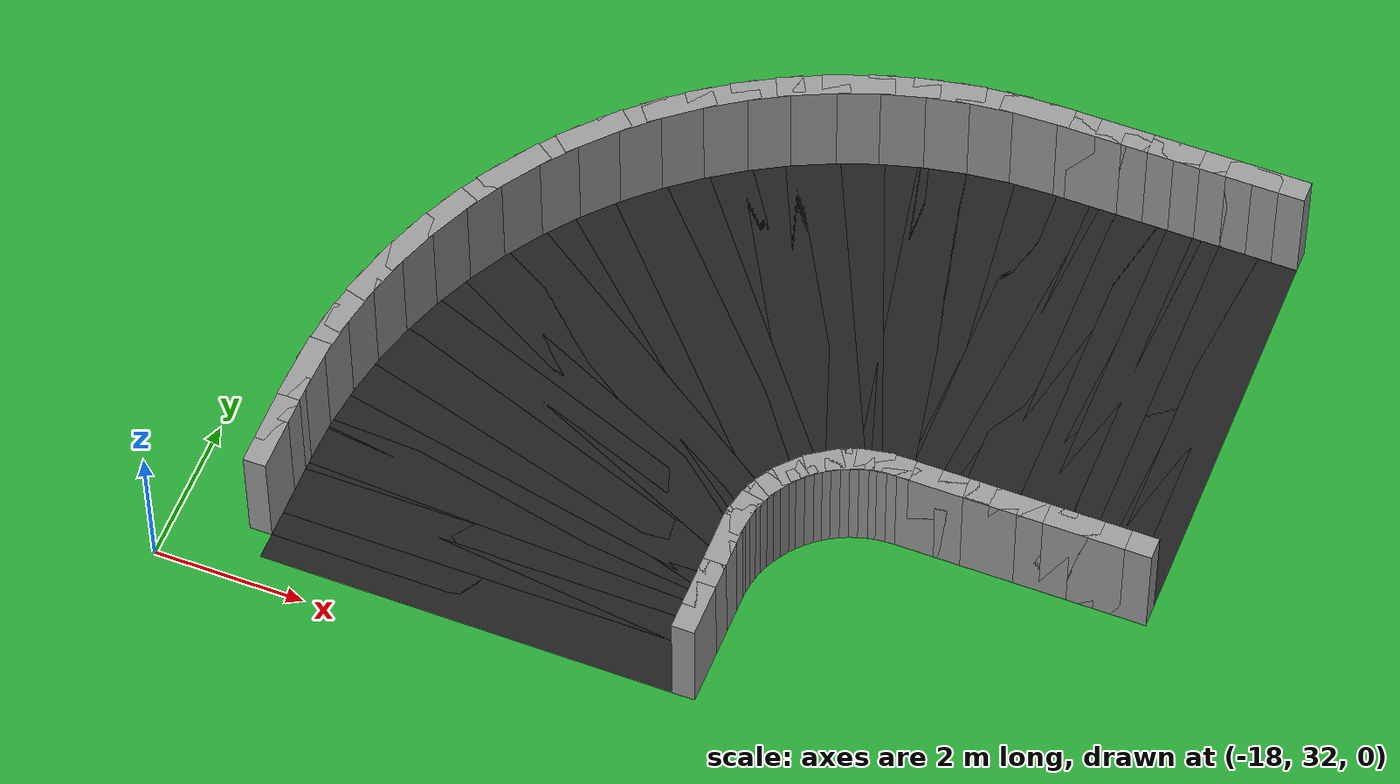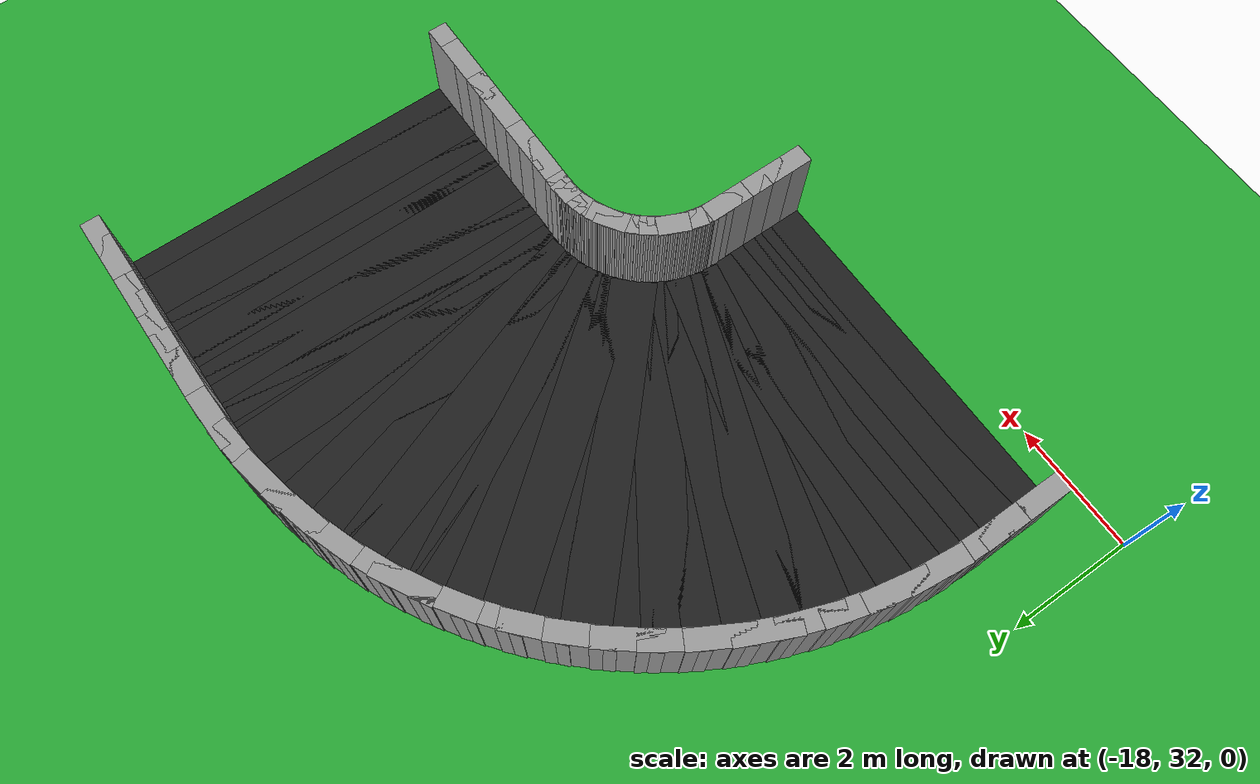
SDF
<sdf version="1.6">
 <world name="loop_speedloop">
  <include><uri>model://sun</uri></include>
  <model name="ground_plane">
   <static>true</static>
   <link name="link">
    <collision name="collision">
     <surface><friction><ode><mu>100</mu><mu2>50</mu2></ode></friction></surface>
     <geometry><plane><normal>0 0 1</normal><size>120 120</size></plane></geometry>
    </collision>
    <visual name="visual">
     <geometry><plane><normal>0 0 1</normal><size>120 120</size></plane></geometry>
     <material>
      <script><uri>file://media/materials/scripts/gazebo.material</uri><name>Gazebo/Green</name></script>
     </material>
    </visual>
   </link>
  </model>
  <model name="asphalt_371">
   <static>true</static>
   <pose>-6.524 38.502 0.005 0 0 3.14159</pose>
   <link name="link">
    <visual name="visual">
     <geometry><box><size>0.710 5.500 0.010</size></box></geometry>
     <material>
      <script><uri>file://media/materials/scripts/gazebo.material</uri><name>Gazebo/Black</name></script>
     </material>
    </visual>
   </link>
  </model>
  <model name="curbL_371">
   <static>true</static>
   <pose>-6.524 35.602 0.750 0 0 3.14159</pose>
   <link name="link">
    <collision name="collision"><geometry><box><size>0.710 0.300 1.500</size></box></geometry></collision>
    <visual name="visual">
     <geometry><box><size>0.710 0.300 1.500</size></box></geometry>
     <material>
      <script><uri>file://media/materials/scripts/gazebo.material</uri><name>Gazebo/Grey</name></script>
     </material>
    </visual>
   </link>
  </model>
  <model name="curbR_371">
   <static>true</static>
   <pose>-6.524 41.402 0.750 0 0 3.14159</pose>
   <link name="link">
    <collision name="collision"><geometry><box><size>0.710 0.300 1.500</size></box></geometry></collision>
    <visual name="visual">
     <geometry><box><size>0.710 0.300 1.500</size></box></geometry>
     <material>
      <script><uri>file://media/materials/scripts/gazebo.material</uri><name>Gazebo/Grey</name></script>
     </material>
    </visual>
   </link>
  </model>
  <model name="asphalt_372">
   <static>true</static>
   <pose>-6.874 38.502 0.005 0 0 3.14159</pose>
   <link name="link">
    <visual name="visual">
     <geometry><box><size>0.710 5.500 0.010</size></box></geometry>
     <material>
      <script><uri>file://media/materials/scripts/gazebo.material</uri><name>Gazebo/Black</name></script>
     </material>
    </visual>
   </link>
  </model>
  <model name="curbL_372">
   <static>true</static>
   <pose>-6.874 35.602 0.750 0 0 3.14159</pose>
   <link name="link">
    <collision name="collision"><geometry><box><size>0.710 0.300 1.500</size></box></geometry></collision>
    <visual name="visual">
     <geometry><box><size>0.710 0.300 1.500</size></box></geometry>
     <material>
      <script><uri>file://media/materials/scripts/gazebo.material</uri><name>Gazebo/Grey</name></script>
     </material>
    </visual>
   </link>
  </model>
  <model name="curbR_372">
   <static>true</static>
   <pose>-6.874 41.402 0.750 0 0 3.14159</pose>
   <link name="link">
    <collision name="collision"><geometry><box><size>0.710 0.300 1.500</size></box></geometry></collision>
    <visual name="visual">
     <geometry><box><size>0.710 0.300 1.500</size></box></geometry>
     <material>
      <script><uri>file://media/materials/scripts/gazebo.material</uri><name>Gazebo/Grey</name></script>
     </material>
    </visual>
   </link>
  </model>
  <model name="asphalt_373">
   <static>true</static>
   <pose>-7.224 38.502 0.005 0 0 3.14159</pose>
   <link name="link">
    <visual name="visual">
     <geometry><box><size>0.710 5.500 0.010</size></box></geometry>
     <material>
      <script><uri>file://media/materials/scripts/gazebo.material</uri><name>Gazebo/Black</name></script>
     </material>
    </visual>
   </link>
  </model>
  <model name="curbL_373">
   <static>true</static>
   <pose>-7.224 35.602 0.750 0 0 3.14159</pose>
   <link name="link">
    <collision name="collision"><geometry><box><size>0.710 0.300 1.500</size></box></geometry></collision>
    <visual name="visual">
     <geometry><box><size>0.710 0.300 1.500</size></box></geometry>
     <material>
      <script><uri>file://media/materials/scripts/gazebo.material</uri><name>Gazebo/Grey</name></script>
     </material>
    </visual>
   </link>
  </model>
  <model name="curbR_373">
   <static>true</static>
   <pose>-7.224 41.402 0.750 0 0 3.14159</pose>
   <link name="link">
    <collision name="collision"><geometry><box><size>0.710 0.300 1.500</size></box></geometry></collision>
    <visual name="visual">
     <geometry><box><size>0.710 0.300 1.500</size></box></geometry>
     <material>
      <script><uri>file://media/materials/scripts/gazebo.material</uri><name>Gazebo/Grey</name></script>
     </material>
    </visual>
   </link>
  </model>
  <model name="asphalt_374">
   <static>true</static>
   <pose>-7.574 38.502 0.005 0 0 3.14159</pose>
   <link name="link">
    <visual name="visual">
     <geometry><box><size>0.710 5.500 0.010</size></box></geometry>
     <material>
      <script><uri>file://media/materials/scripts/gazebo.material</uri><name>Gazebo/Black</name></script>
     </material>
    </visual>
   </link>
  </model>
  <model name="curbL_374">
   <static>true</static>
   <pose>-7.574 35.602 0.750 0 0 3.14159</pose>
   <link name="link">
    <collision name="collision"><geometry><box><size>0.710 0.300 1.500</size></box></geometry></collision>
    <visual name="visual">
     <geometry><box><size>0.710 0.300 1.500</size></box></geometry>
     <material>
      <script><uri>file://media/materials/scripts/gazebo.material</uri><name>Gazebo/Grey</name></script>
     </material>
    </visual>
   </link>
  </model>
  <model name="curbR_374">
   <static>true</static>
   <pose>-7.574 41.402 0.750 0 0 3.14159</pose>
   <link name="link">
    <collision name="collision"><geometry><box><size>0.710 0.300 1.500</size></box></geometry></collision>
    <visual name="visual">
     <geometry><box><size>0.710 0.300 1.500</size></box></geometry>
     <material>
      <script><uri>file://media/materials/scripts/gazebo.material</uri><name>Gazebo/Grey</name></script>
     </material>
    </visual>
   </link>
  </model>
  <model name="asphalt_375">
   <static>true</static>
   <pose>-7.924 38.502 0.005 0 0 3.14159</pose>
   <link name="link">
    <visual name="visual">
     <geometry><box><size>0.710 5.500 0.010</size></box></geometry>
     <material>
      <script><uri>file://media/materials/scripts/gazebo.material</uri><name>Gazebo/Black</name></script>
     </material>
    </visual>
   </link>
  </model>
  <model name="curbL_375">
   <static>true</static>
   <pose>-7.924 35.602 0.750 0 0 3.14159</pose>
   <link name="link">
    <collision name="collision"><geometry><box><size>0.710 0.300 1.500</size></box></geometry></collision>
    <visual name="visual">
     <geometry><box><size>0.710 0.300 1.500</size></box></geometry>
     <material>
      <script><uri>file://media/materials/scripts/gazebo.material</uri><name>Gazebo/Grey</name></script>
     </material>
    </visual>
   </link>
  </model>
  <model name="curbR_375">
   <static>true</static>
   <pose>-7.924 41.402 0.750 0 0 3.14159</pose>
   <link name="link">
    <collision name="collision"><geometry><box><size>0.710 0.300 1.500</size></box></geometry></collision>
    <visual name="visual">
     <geometry><box><size>0.710 0.300 1.500</size></box></geometry>
     <material>
      <script><uri>file://media/materials/scripts/gazebo.material</uri><name>Gazebo/Grey</name></script>
     </material>
    </visual>
   </link>
  </model>
  <model name="asphalt_376">
   <static>true</static>
   <pose>-8.274 38.502 0.005 0 0 3.14159</pose>
   <link name="link">
    <visual name="visual">
     <geometry><box><size>0.710 5.500 0.010</size></box></geometry>
     <material>
      <script><uri>file://media/materials/scripts/gazebo.material</uri><name>Gazebo/Black</name></script>
     </material>
    </visual>
   </link>
  </model>
  <model name="curbL_376">
   <static>true</static>
   <pose>-8.274 35.602 0.750 0 0 3.14159</pose>
   <link name="link">
    <collision name="collision"><geometry><box><size>0.710 0.300 1.500</size></box></geometry></collision>
    <visual name="visual">
     <geometry><box><size>0.710 0.300 1.500</size></box></geometry>
     <material>
      <script><uri>file://media/materials/scripts/gazebo.material</uri><name>Gazebo/Grey</name></script>
     </material>
    </visual>
   </link>
  </model>
  <model name="curbR_376">
   <static>true</static>
   <pose>-8.274 41.402 0.750 0 0 3.14159</pose>
   <link name="link">
    <collision name="collision"><geometry><box><size>0.710 0.300 1.500</size></box></geometry></collision>
    <visual name="visual">
     <geometry><box><size>0.710 0.300 1.500</size></box></geometry>
     <material>
      <script><uri>file://media/materials/scripts/gazebo.material</uri><name>Gazebo/Grey</name></script>
     </material>
    </visual>
   </link>
  </model>
  <model name="asphalt_377">
   <static>true</static>
   <pose>-8.624 38.502 0.005 0 0 3.14159</pose>
   <link name="link">
    <visual name="visual">
     <geometry><box><size>0.710 5.500 0.010</size></box></geometry>
     <material>
      <script><uri>file://media/materials/scripts/gazebo.material</uri><name>Gazebo/Black</name></script>
     </material>
    </visual>
   </link>
  </model>
  <model name="curbL_377">
   <static>true</static>
   <pose>-8.624 35.602 0.750 0 0 3.14159</pose>
   <link name="link">
    <collision name="collision"><geometry><box><size>0.710 0.300 1.500</size></box></geometry></collision>
    <visual name="visual">
     <geometry><box><size>0.710 0.300 1.500</size></box></geometry>
     <material>
      <script><uri>file://media/materials/scripts/gazebo.material</uri><name>Gazebo/Grey</name></script>
     </material>
    </visual>
   </link>
  </model>
  <model name="curbR_377">
   <static>true</static>
   <pose>-8.624 41.402 0.750 0 0 3.14159</pose>
   <link name="link">
    <collision name="collision"><geometry><box><size>0.710 0.300 1.500</size></box></geometry></collision>
    <visual name="visual">
     <geometry><box><size>0.710 0.300 1.500</size></box></geometry>
     <material>
      <script><uri>file://media/materials/scripts/gazebo.material</uri><name>Gazebo/Grey</name></script>
     </material>
    </visual>
   </link>
  </model>
  <model name="asphalt_378">
   <static>true</static>
   <pose>-8.974 38.502 0.005 0 0 3.14159</pose>
   <link name="link">
    <visual name="visual">
     <geometry><box><size>0.710 5.500 0.010</size></box></geometry>
     <material>
      <script><uri>file://media/materials/scripts/gazebo.material</uri><name>Gazebo/Black</name></script>
     </material>
    </visual>
   </link>
  </model>
  <model name="curbL_378">
   <static>true</static>
   <pose>-8.974 35.602 0.750 0 0 3.14159</pose>
   <link name="link">
    <collision name="collision"><geometry><box><size>0.710 0.300 1.500</size></box></geometry></collision>
    <visual name="visual">
     <geometry><box><size>0.710 0.300 1.500</size></box></geometry>
     <material>
      <script><uri>file://media/materials/scripts/gazebo.material</uri><name>Gazebo/Grey</name></script>
     </material>
    </visual>
   </link>
  </model>
  <model name="curbR_378">
   <static>true</static>
   <pose>-8.974 41.402 0.750 0 0 3.14159</pose>
   <link name="link">
    <collision name="collision"><geometry><box><size>0.710 0.300 1.500</size></box></geometry></collision>
    <visual name="visual">
     <geometry><box><size>0.710 0.300 1.500</size></box></geometry>
     <material>
      <script><uri>file://media/materials/scripts/gazebo.material</uri><name>Gazebo/Grey</name></script>
     </material>
    </visual>
   </link>
  </model>
  <model name="asphalt_379">
   <static>true</static>
   <pose>-9.324 38.502 0.005 0 0 3.14159</pose>
   <link name="link">
    <visual name="visual">
     <geometry><box><size>0.710 5.500 0.010</size></box></geometry>
     <material>
      <script><uri>file://media/materials/scripts/gazebo.material</uri><name>Gazebo/Black</name></script>
     </material>
    </visual>
   </link>
  </model>
  <model name="curbL_379">
   <static>true</static>
   <pose>-9.324 35.602 0.750 0 0 3.14159</pose>
   <link name="link">
    <collision name="collision"><geometry><box><size>0.710 0.300 1.500</size></box></geometry></collision>
    <visual name="visual">
     <geometry><box><size>0.710 0.300 1.500</size></box></geometry>
     <material>
      <script><uri>file://media/materials/scripts/gazebo.material</uri><name>Gazebo/Grey</name></script>
     </material>
    </visual>
   </link>
  </model>
  <model name="curbR_379">
   <static>true</static>
   <pose>-9.324 41.402 0.750 0 0 3.14159</pose>
   <link name="link">
    <collision name="collision"><geometry><box><size>0.710 0.300 1.500</size></box></geometry></collision>
    <visual name="visual">
     <geometry><box><size>0.710 0.300 1.500</size></box></geometry>
     <material>
      <script><uri>file://media/materials/scripts/gazebo.material</uri><name>Gazebo/Grey</name></script>
     </material>
    </visual>
   </link>
  </model>
  <model name="asphalt_380">
   <static>true</static>
   <pose>-9.676 38.495 0.005 0 0 -3.10232</pose>
   <link name="link">
    <visual name="visual">
     <geometry><box><size>0.713 5.500 0.010</size></box></geometry>
     <material>
      <script><uri>file://media/materials/scripts/gazebo.material</uri><name>Gazebo/Black</name></script>
     </material>
    </visual>
   </link>
  </model>
  <model name="curbL_380">
   <static>true</static>
   <pose>-9.562 35.599 0.750 0 0 -3.10232</pose>
   <link name="link">
    <collision name="collision"><geometry><box><size>0.486 0.300 1.500</size></box></geometry></collision>
    <visual name="visual">
     <geometry><box><size>0.486 0.300 1.500</size></box></geometry>
     <material>
      <script><uri>file://media/materials/scripts/gazebo.material</uri><name>Gazebo/Grey</name></script>
     </material>
    </visual>
   </link>
  </model>
  <model name="curbR_380">
   <static>true</static>
   <pose>-9.790 41.390 0.750 0 0 -3.10232</pose>
   <link name="link">
    <collision name="collision"><geometry><box><size>0.941 0.300 1.500</size></box></geometry></collision>
    <visual name="visual">
     <geometry><box><size>0.941 0.300 1.500</size></box></geometry>
     <material>
      <script><uri>file://media/materials/scripts/gazebo.material</uri><name>Gazebo/Grey</name></script>
     </material>
    </visual>
   </link>
  </model>
  <model name="asphalt_381">
   <static>true</static>
   <pose>-10.028 38.467 0.005 0 0 -3.02378</pose>
   <link name="link">
    <visual name="visual">
     <geometry><box><size>0.713 5.500 0.010</size></box></geometry>
     <material>
      <script><uri>file://media/materials/scripts/gazebo.material</uri><name>Gazebo/Black</name></script>
     </material>
    </visual>
   </link>
  </model>
  <model name="curbL_381">
   <static>true</static>
   <pose>-9.687 35.589 0.750 0 0 -3.02378</pose>
   <link name="link">
    <collision name="collision"><geometry><box><size>0.486 0.300 1.500</size></box></geometry></collision>
    <visual name="visual">
     <geometry><box><size>0.486 0.300 1.500</size></box></geometry>
     <material>
      <script><uri>file://media/materials/scripts/gazebo.material</uri><name>Gazebo/Grey</name></script>
     </material>
    </visual>
   </link>
  </model>
  <model name="curbR_381">
   <static>true</static>
   <pose>-10.368 41.345 0.750 0 0 -3.02378</pose>
   <link name="link">
    <collision name="collision"><geometry><box><size>0.941 0.300 1.500</size></box></geometry></collision>
    <visual name="visual">
     <geometry><box><size>0.941 0.300 1.500</size></box></geometry>
     <material>
      <script><uri>file://media/materials/scripts/gazebo.material</uri><name>Gazebo/Grey</name></script>
     </material>
    </visual>
   </link>
  </model>
  <model name="asphalt_382">
   <static>true</static>
   <pose>-10.377 38.412 0.005 0 0 -2.94524</pose>
   <link name="link">
    <visual name="visual">
     <geometry><box><size>0.713 5.500 0.010</size></box></geometry>
     <material>
      <script><uri>file://media/materials/scripts/gazebo.material</uri><name>Gazebo/Black</name></script>
     </material>
    </visual>
   </link>
  </model>
  <model name="curbL_382">
   <static>true</static>
   <pose>-9.811 35.570 0.750 0 0 -2.94524</pose>
   <link name="link">
    <collision name="collision"><geometry><box><size>0.486 0.300 1.500</size></box></geometry></collision>
    <visual name="visual">
     <geometry><box><size>0.486 0.300 1.500</size></box></geometry>
     <material>
      <script><uri>file://media/materials/scripts/gazebo.material</uri><name>Gazebo/Grey</name></script>
     </material>
    </visual>
   </link>
  </model>
  <model name="curbR_382">
   <static>true</static>
   <pose>-10.942 41.254 0.750 0 0 -2.94524</pose>
   <link name="link">
    <collision name="collision"><geometry><box><size>0.941 0.300 1.500</size></box></geometry></collision>
    <visual name="visual">
     <geometry><box><size>0.941 0.300 1.500</size></box></geometry>
     <material>
      <script><uri>file://media/materials/scripts/gazebo.material</uri><name>Gazebo/Grey</name></script>
     </material>
    </visual>
   </link>
  </model>
  <model name="asphalt_383">
   <static>true</static>
   <pose>-10.720 38.329 0.005 0 0 -2.86670</pose>
   <link name="link">
    <visual name="visual">
     <geometry><box><size>0.713 5.500 0.010</size></box></geometry>
     <material>
      <script><uri>file://media/materials/scripts/gazebo.material</uri><name>Gazebo/Black</name></script>
     </material>
    </visual>
   </link>
  </model>
  <model name="curbL_383">
   <static>true</static>
   <pose>-9.933 35.540 0.750 0 0 -2.86670</pose>
   <link name="link">
    <collision name="collision"><geometry><box><size>0.486 0.300 1.500</size></box></geometry></collision>
    <visual name="visual">
     <geometry><box><size>0.486 0.300 1.500</size></box></geometry>
     <material>
      <script><uri>file://media/materials/scripts/gazebo.material</uri><name>Gazebo/Grey</name></script>
     </material>
    </visual>
   </link>
  </model>
  <model name="curbR_383">
   <static>true</static>
   <pose>-11.507 41.118 0.750 0 0 -2.86670</pose>
   <link name="link">
    <collision name="collision"><geometry><box><size>0.941 0.300 1.500</size></box></geometry></collision>
    <visual name="visual">
     <geometry><box><size>0.941 0.300 1.500</size></box></geometry>
     <material>
      <script><uri>file://media/materials/scripts/gazebo.material</uri><name>Gazebo/Grey</name></script>
     </material>
    </visual>
   </link>
  </model>
  <model name="asphalt_384">
   <static>true</static>
   <pose>-11.056 38.220 0.005 0 0 -2.78816</pose>
   <link name="link">
    <visual name="visual">
     <geometry><box><size>0.713 5.500 0.010</size></box></geometry>
     <material>
      <script><uri>file://media/materials/scripts/gazebo.material</uri><name>Gazebo/Black</name></script>
     </material>
    </visual>
   </link>
  </model>
  <model name="curbL_384">
   <static>true</static>
   <pose>-10.053 35.501 0.750 0 0 -2.78816</pose>
   <link name="link">
    <collision name="collision"><geometry><box><size>0.486 0.300 1.500</size></box></geometry></collision>
    <visual name="visual">
     <geometry><box><size>0.486 0.300 1.500</size></box></geometry>
     <material>
      <script><uri>file://media/materials/scripts/gazebo.material</uri><name>Gazebo/Grey</name></script>
     </material>
    </visual>
   </link>
  </model>
  <model name="curbR_384">
   <static>true</static>
   <pose>-12.059 40.939 0.750 0 0 -2.78816</pose>
   <link name="link">
    <collision name="collision"><geometry><box><size>0.941 0.300 1.500</size></box></geometry></collision>
    <visual name="visual">
     <geometry><box><size>0.941 0.300 1.500</size></box></geometry>
     <material>
      <script><uri>file://media/materials/scripts/gazebo.material</uri><name>Gazebo/Grey</name></script>
     </material>
    </visual>
   </link>
  </model>
  <model name="asphalt_385">
   <static>true</static>
   <pose>-11.382 38.085 0.005 0 0 -2.70962</pose>
   <link name="link">
    <visual name="visual">
     <geometry><box><size>0.713 5.500 0.010</size></box></geometry>
     <material>
      <script><uri>file://media/materials/scripts/gazebo.material</uri><name>Gazebo/Black</name></script>
     </material>
    </visual>
   </link>
  </model>
  <model name="curbL_385">
   <static>true</static>
   <pose>-10.169 35.453 0.750 0 0 -2.70962</pose>
   <link name="link">
    <collision name="collision"><geometry><box><size>0.486 0.300 1.500</size></box></geometry></collision>
    <visual name="visual">
     <geometry><box><size>0.486 0.300 1.500</size></box></geometry>
     <material>
      <script><uri>file://media/materials/scripts/gazebo.material</uri><name>Gazebo/Grey</name></script>
     </material>
    </visual>
   </link>
  </model>
  <model name="curbR_385">
   <static>true</static>
   <pose>-12.595 40.716 0.750 0 0 -2.70962</pose>
   <link name="link">
    <collision name="collision"><geometry><box><size>0.941 0.300 1.500</size></box></geometry></collision>
    <visual name="visual">
     <geometry><box><size>0.941 0.300 1.500</size></box></geometry>
     <material>
      <script><uri>file://media/materials/scripts/gazebo.material</uri><name>Gazebo/Grey</name></script>
     </material>
    </visual>
   </link>
  </model>
  <model name="asphalt_386">
   <static>true</static>
   <pose>-11.697 37.925 0.005 0 0 -2.63108</pose>
   <link name="link">
    <visual name="visual">
     <geometry><box><size>0.713 5.500 0.010</size></box></geometry>
     <material>
      <script><uri>file://media/materials/scripts/gazebo.material</uri><name>Gazebo/Black</name></script>
     </material>
    </visual>
   </link>
  </model>
  <model name="curbL_386">
   <static>true</static>
   <pose>-10.281 35.396 0.750 0 0 -2.63108</pose>
   <link name="link">
    <collision name="collision"><geometry><box><size>0.486 0.300 1.500</size></box></geometry></collision>
    <visual name="visual">
     <geometry><box><size>0.486 0.300 1.500</size></box></geometry>
     <material>
      <script><uri>file://media/materials/scripts/gazebo.material</uri><name>Gazebo/Grey</name></script>
     </material>
    </visual>
   </link>
  </model>
  <model name="curbR_386">
   <static>true</static>
   <pose>-13.113 40.453 0.750 0 0 -2.63108</pose>
   <link name="link">
    <collision name="collision"><geometry><box><size>0.941 0.300 1.500</size></box></geometry></collision>
    <visual name="visual">
     <geometry><box><size>0.941 0.300 1.500</size></box></geometry>
     <material>
      <script><uri>file://media/materials/scripts/gazebo.material</uri><name>Gazebo/Grey</name></script>
     </material>
    </visual>
   </link>
  </model>
  <model name="asphalt_387">
   <static>true</static>
   <pose>-11.998 37.740 0.005 0 0 -2.55254</pose>
   <link name="link">
    <visual name="visual">
     <geometry><box><size>0.713 5.500 0.010</size></box></geometry>
     <material>
      <script><uri>file://media/materials/scripts/gazebo.material</uri><name>Gazebo/Black</name></script>
     </material>
    </visual>
   </link>
  </model>
  <model name="curbL_387">
   <static>true</static>
   <pose>-10.388 35.331 0.750 0 0 -2.55254</pose>
   <link name="link">
    <collision name="collision"><geometry><box><size>0.486 0.300 1.500</size></box></geometry></collision>
    <visual name="visual">
     <geometry><box><size>0.486 0.300 1.500</size></box></geometry>
     <material>
      <script><uri>file://media/materials/scripts/gazebo.material</uri><name>Gazebo/Grey</name></script>
     </material>
    </visual>
   </link>
  </model>
  <model name="curbR_387">
   <static>true</static>
   <pose>-13.608 40.149 0.750 0 0 -2.55254</pose>
   <link name="link">
    <collision name="collision"><geometry><box><size>0.941 0.300 1.500</size></box></geometry></collision>
    <visual name="visual">
     <geometry><box><size>0.941 0.300 1.500</size></box></geometry>
     <material>
      <script><uri>file://media/materials/scripts/gazebo.material</uri><name>Gazebo/Grey</name></script>
     </material>
    </visual>
   </link>
  </model>
  <model name="asphalt_388">
   <static>true</static>
   <pose>-12.284 37.532 0.005 0 0 -2.47400</pose>
   <link name="link">
    <visual name="visual">
     <geometry><box><size>0.713 5.500 0.010</size></box></geometry>
     <material>
      <script><uri>file://media/materials/scripts/gazebo.material</uri><name>Gazebo/Black</name></script>
     </material>
    </visual>
   </link>
  </model>
  <model name="curbL_388">
   <static>true</static>
   <pose>-10.490 35.257 0.750 0 0 -2.47400</pose>
   <link name="link">
    <collision name="collision"><geometry><box><size>0.486 0.300 1.500</size></box></geometry></collision>
    <visual name="visual">
     <geometry><box><size>0.486 0.300 1.500</size></box></geometry>
     <material>
      <script><uri>file://media/materials/scripts/gazebo.material</uri><name>Gazebo/Grey</name></script>
     </material>
    </visual>
   </link>
  </model>
  <model name="curbR_388">
   <static>true</static>
   <pose>-14.078 39.808 0.750 0 0 -2.47400</pose>
   <link name="link">
    <collision name="collision"><geometry><box><size>0.941 0.300 1.500</size></box></geometry></collision>
    <visual name="visual">
     <geometry><box><size>0.941 0.300 1.500</size></box></geometry>
     <material>
      <script><uri>file://media/materials/scripts/gazebo.material</uri><name>Gazebo/Grey</name></script>
     </material>
    </visual>
   </link>
  </model>
  <model name="asphalt_389">
   <static>true</static>
   <pose>-12.552 37.303 0.005 0 0 -2.39546</pose>
   <link name="link">
    <visual name="visual">
     <geometry><box><size>0.713 5.500 0.010</size></box></geometry>
     <material>
      <script><uri>file://media/materials/scripts/gazebo.material</uri><name>Gazebo/Black</name></script>
     </material>
    </visual>
   </link>
  </model>
  <model name="curbL_389">
   <static>true</static>
   <pose>-10.585 35.175 0.750 0 0 -2.39546</pose>
   <link name="link">
    <collision name="collision"><geometry><box><size>0.486 0.300 1.500</size></box></geometry></collision>
    <visual name="visual">
     <geometry><box><size>0.486 0.300 1.500</size></box></geometry>
     <material>
      <script><uri>file://media/materials/scripts/gazebo.material</uri><name>Gazebo/Grey</name></script>
     </material>
    </visual>
   </link>
  </model>
  <model name="curbR_389">
   <static>true</static>
   <pose>-14.519 39.431 0.750 0 0 -2.39546</pose>
   <link name="link">
    <collision name="collision"><geometry><box><size>0.941 0.300 1.500</size></box></geometry></collision>
    <visual name="visual">
     <geometry><box><size>0.941 0.300 1.500</size></box></geometry>
     <material>
      <script><uri>file://media/materials/scripts/gazebo.material</uri><name>Gazebo/Grey</name></script>
     </material>
    </visual>
   </link>
  </model>
  <model name="asphalt_390">
   <static>true</static>
   <pose>-12.802 37.053 0.005 0 0 -2.31692</pose>
   <link name="link">
    <visual name="visual">
     <geometry><box><size>0.713 5.500 0.010</size></box></geometry>
     <material>
      <script><uri>file://media/materials/scripts/gazebo.material</uri><name>Gazebo/Black</name></script>
     </material>
    </visual>
   </link>
  </model>
  <model name="curbL_390">
   <static>true</static>
   <pose>-10.674 35.086 0.750 0 0 -2.31692</pose>
   <link name="link">
    <collision name="collision"><geometry><box><size>0.486 0.300 1.500</size></box></geometry></collision>
    <visual name="visual">
     <geometry><box><size>0.486 0.300 1.500</size></box></geometry>
     <material>
      <script><uri>file://media/materials/scripts/gazebo.material</uri><name>Gazebo/Grey</name></script>
     </material>
    </visual>
   </link>
  </model>
  <model name="curbR_390">
   <static>true</static>
   <pose>-14.930 39.020 0.750 0 0 -2.31692</pose>
   <link name="link">
    <collision name="collision"><geometry><box><size>0.941 0.300 1.500</size></box></geometry></collision>
    <visual name="visual">
     <geometry><box><size>0.941 0.300 1.500</size></box></geometry>
     <material>
      <script><uri>file://media/materials/scripts/gazebo.material</uri><name>Gazebo/Grey</name></script>
     </material>
    </visual>
   </link>
  </model>
  <model name="asphalt_391">
   <static>true</static>
   <pose>-13.031 36.785 0.005 0 0 -2.23838</pose>
   <link name="link">
    <visual name="visual">
     <geometry><box><size>0.713 5.500 0.010</size></box></geometry>
     <material>
      <script><uri>file://media/materials/scripts/gazebo.material</uri><name>Gazebo/Black</name></script>
     </material>
    </visual>
   </link>
  </model>
  <model name="curbL_391">
   <static>true</static>
   <pose>-10.756 34.991 0.750 0 0 -2.23838</pose>
   <link name="link">
    <collision name="collision"><geometry><box><size>0.486 0.300 1.500</size></box></geometry></collision>
    <visual name="visual">
     <geometry><box><size>0.486 0.300 1.500</size></box></geometry>
     <material>
      <script><uri>file://media/materials/scripts/gazebo.material</uri><name>Gazebo/Grey</name></script>
     </material>
    </visual>
   </link>
  </model>
  <model name="curbR_391">
   <static>true</static>
   <pose>-15.307 38.579 0.750 0 0 -2.23838</pose>
   <link name="link">
    <collision name="collision"><geometry><box><size>0.941 0.300 1.500</size></box></geometry></collision>
    <visual name="visual">
     <geometry><box><size>0.941 0.300 1.500</size></box></geometry>
     <material>
      <script><uri>file://media/materials/scripts/gazebo.material</uri><name>Gazebo/Grey</name></script>
     </material>
    </visual>
   </link>
  </model>
  <model name="asphalt_392">
   <static>true</static>
   <pose>-13.239 36.499 0.005 0 0 -2.15984</pose>
   <link name="link">
    <visual name="visual">
     <geometry><box><size>0.713 5.500 0.010</size></box></geometry>
     <material>
      <script><uri>file://media/materials/scripts/gazebo.material</uri><name>Gazebo/Black</name></script>
     </material>
    </visual>
   </link>
  </model>
  <model name="curbL_392">
   <static>true</static>
   <pose>-10.829 34.889 0.750 0 0 -2.15984</pose>
   <link name="link">
    <collision name="collision"><geometry><box><size>0.486 0.300 1.500</size></box></geometry></collision>
    <visual name="visual">
     <geometry><box><size>0.486 0.300 1.500</size></box></geometry>
     <material>
      <script><uri>file://media/materials/scripts/gazebo.material</uri><name>Gazebo/Grey</name></script>
     </material>
    </visual>
   </link>
  </model>
  <model name="curbR_392">
   <static>true</static>
   <pose>-15.648 38.109 0.750 0 0 -2.15984</pose>
   <link name="link">
    <collision name="collision"><geometry><box><size>0.941 0.300 1.500</size></box></geometry></collision>
    <visual name="visual">
     <geometry><box><size>0.941 0.300 1.500</size></box></geometry>
     <material>
      <script><uri>file://media/materials/scripts/gazebo.material</uri><name>Gazebo/Grey</name></script>
     </material>
    </visual>
   </link>
  </model>
  <model name="asphalt_393">
   <static>true</static>
   <pose>-13.423 36.198 0.005 0 0 -2.08131</pose>
   <link name="link">
    <visual name="visual">
     <geometry><box><size>0.713 5.500 0.010</size></box></geometry>
     <material>
      <script><uri>file://media/materials/scripts/gazebo.material</uri><name>Gazebo/Black</name></script>
     </material>
    </visual>
   </link>
  </model>
  <model name="curbL_393">
   <static>true</static>
   <pose>-10.895 34.782 0.750 0 0 -2.08131</pose>
   <link name="link">
    <collision name="collision"><geometry><box><size>0.486 0.300 1.500</size></box></geometry></collision>
    <visual name="visual">
     <geometry><box><size>0.486 0.300 1.500</size></box></geometry>
     <material>
      <script><uri>file://media/materials/scripts/gazebo.material</uri><name>Gazebo/Grey</name></script>
     </material>
    </visual>
   </link>
  </model>
  <model name="curbR_393">
   <static>true</static>
   <pose>-15.952 37.614 0.750 0 0 -2.08131</pose>
   <link name="link">
    <collision name="collision"><geometry><box><size>0.941 0.300 1.500</size></box></geometry></collision>
    <visual name="visual">
     <geometry><box><size>0.941 0.300 1.500</size></box></geometry>
     <material>
      <script><uri>file://media/materials/scripts/gazebo.material</uri><name>Gazebo/Grey</name></script>
     </material>
    </visual>
   </link>
  </model>
  <model name="asphalt_394">
   <static>true</static>
   <pose>-13.584 35.883 0.005 0 0 -2.00277</pose>
   <link name="link">
    <visual name="visual">
     <geometry><box><size>0.713 5.500 0.010</size></box></geometry>
     <material>
      <script><uri>file://media/materials/scripts/gazebo.material</uri><name>Gazebo/Black</name></script>
     </material>
    </visual>
   </link>
  </model>
  <model name="curbL_394">
   <static>true</static>
   <pose>-10.952 34.670 0.750 0 0 -2.00277</pose>
   <link name="link">
    <collision name="collision"><geometry><box><size>0.486 0.300 1.500</size></box></geometry></collision>
    <visual name="visual">
     <geometry><box><size>0.486 0.300 1.500</size></box></geometry>
     <material>
      <script><uri>file://media/materials/scripts/gazebo.material</uri><name>Gazebo/Grey</name></script>
     </material>
    </visual>
   </link>
  </model>
  <model name="curbR_394">
   <static>true</static>
   <pose>-16.215 37.097 0.750 0 0 -2.00277</pose>
   <link name="link">
    <collision name="collision"><geometry><box><size>0.941 0.300 1.500</size></box></geometry></collision>
    <visual name="visual">
     <geometry><box><size>0.941 0.300 1.500</size></box></geometry>
     <material>
      <script><uri>file://media/materials/scripts/gazebo.material</uri><name>Gazebo/Grey</name></script>
     </material>
    </visual>
   </link>
  </model>
  <model name="asphalt_395">
   <static>true</static>
   <pose>-13.719 35.557 0.005 0 0 -1.92423</pose>
   <link name="link">
    <visual name="visual">
     <geometry><box><size>0.713 5.500 0.010</size></box></geometry>
     <material>
      <script><uri>file://media/materials/scripts/gazebo.material</uri><name>Gazebo/Black</name></script>
     </material>
    </visual>
   </link>
  </model>
  <model name="curbL_395">
   <static>true</static>
   <pose>-11.000 34.554 0.750 0 0 -1.92423</pose>
   <link name="link">
    <collision name="collision"><geometry><box><size>0.486 0.300 1.500</size></box></geometry></collision>
    <visual name="visual">
     <geometry><box><size>0.486 0.300 1.500</size></box></geometry>
     <material>
      <script><uri>file://media/materials/scripts/gazebo.material</uri><name>Gazebo/Grey</name></script>
     </material>
    </visual>
   </link>
  </model>
  <model name="curbR_395">
   <static>true</static>
   <pose>-16.438 36.560 0.750 0 0 -1.92423</pose>
   <link name="link">
    <collision name="collision"><geometry><box><size>0.941 0.300 1.500</size></box></geometry></collision>
    <visual name="visual">
     <geometry><box><size>0.941 0.300 1.500</size></box></geometry>
     <material>
      <script><uri>file://media/materials/scripts/gazebo.material</uri><name>Gazebo/Grey</name></script>
     </material>
    </visual>
   </link>
  </model>
  <model name="asphalt_396">
   <static>true</static>
   <pose>-13.828 35.221 0.005 0 0 -1.84569</pose>
   <link name="link">
    <visual name="visual">
     <geometry><box><size>0.713 5.500 0.010</size></box></geometry>
     <material>
      <script><uri>file://media/materials/scripts/gazebo.material</uri><name>Gazebo/Black</name></script>
     </material>
    </visual>
   </link>
  </model>
  <model name="curbL_396">
   <static>true</static>
   <pose>-11.039 34.435 0.750 0 0 -1.84569</pose>
   <link name="link">
    <collision name="collision"><geometry><box><size>0.486 0.300 1.500</size></box></geometry></collision>
    <visual name="visual">
     <geometry><box><size>0.486 0.300 1.500</size></box></geometry>
     <material>
      <script><uri>file://media/materials/scripts/gazebo.material</uri><name>Gazebo/Grey</name></script>
     </material>
    </visual>
   </link>
  </model>
  <model name="curbR_396">
   <static>true</static>
   <pose>-16.617 36.008 0.750 0 0 -1.84569</pose>
   <link name="link">
    <collision name="collision"><geometry><box><size>0.941 0.300 1.500</size></box></geometry></collision>
    <visual name="visual">
     <geometry><box><size>0.941 0.300 1.500</size></box></geometry>
     <material>
      <script><uri>file://media/materials/scripts/gazebo.material</uri><name>Gazebo/Grey</name></script>
     </material>
    </visual>
   </link>
  </model>
  <model name="asphalt_397">
   <static>true</static>
   <pose>-13.910 34.878 0.005 0 0 -1.76715</pose>
   <link name="link">
    <visual name="visual">
     <geometry><box><size>0.713 5.500 0.010</size></box></geometry>
     <material>
      <script><uri>file://media/materials/scripts/gazebo.material</uri><name>Gazebo/Black</name></script>
     </material>
    </visual>
   </link>
  </model>
  <model name="curbL_397">
   <static>true</static>
   <pose>-11.068 34.312 0.750 0 0 -1.76715</pose>
   <link name="link">
    <collision name="collision"><geometry><box><size>0.486 0.300 1.500</size></box></geometry></collision>
    <visual name="visual">
     <geometry><box><size>0.486 0.300 1.500</size></box></geometry>
     <material>
      <script><uri>file://media/materials/scripts/gazebo.material</uri><name>Gazebo/Grey</name></script>
     </material>
    </visual>
   </link>
  </model>
  <model name="curbR_397">
   <static>true</static>
   <pose>-16.753 35.443 0.750 0 0 -1.76715</pose>
   <link name="link">
    <collision name="collision"><geometry><box><size>0.941 0.300 1.500</size></box></geometry></collision>
    <visual name="visual">
     <geometry><box><size>0.941 0.300 1.500</size></box></geometry>
     <material>
      <script><uri>file://media/materials/scripts/gazebo.material</uri><name>Gazebo/Grey</name></script>
     </material>
    </visual>
   </link>
  </model>
  <model name="asphalt_398">
   <static>true</static>
   <pose>-13.966 34.529 0.005 0 0 -1.68861</pose>
   <link name="link">
    <visual name="visual">
     <geometry><box><size>0.713 5.500 0.010</size></box></geometry>
     <material>
      <script><uri>file://media/materials/scripts/gazebo.material</uri><name>Gazebo/Black</name></script>
     </material>
    </visual>
   </link>
  </model>
  <model name="curbL_398">
   <static>true</static>
   <pose>-11.088 34.188 0.750 0 0 -1.68861</pose>
   <link name="link">
    <collision name="collision"><geometry><box><size>0.486 0.300 1.500</size></box></geometry></collision>
    <visual name="visual">
     <geometry><box><size>0.486 0.300 1.500</size></box></geometry>
     <material>
      <script><uri>file://media/materials/scripts/gazebo.material</uri><name>Gazebo/Grey</name></script>
     </material>
    </visual>
   </link>
  </model>
  <model name="curbR_398">
   <static>true</static>
   <pose>-16.843 34.870 0.750 0 0 -1.68861</pose>
   <link name="link">
    <collision name="collision"><geometry><box><size>0.941 0.300 1.500</size></box></geometry></collision>
    <visual name="visual">
     <geometry><box><size>0.941 0.300 1.500</size></box></geometry>
     <material>
      <script><uri>file://media/materials/scripts/gazebo.material</uri><name>Gazebo/Grey</name></script>
     </material>
    </visual>
   </link>
  </model>
  <model name="asphalt_399">
   <static>true</static>
   <pose>-13.993 34.177 0.005 0 0 -1.61007</pose>
   <link name="link">
    <visual name="visual">
     <geometry><box><size>0.713 5.500 0.010</size></box></geometry>
     <material>
      <script><uri>file://media/materials/scripts/gazebo.material</uri><name>Gazebo/Black</name></script>
     </material>
    </visual>
   </link>
  </model>
  <model name="curbL_399">
   <static>true</static>
   <pose>-11.098 34.063 0.750 0 0 -1.61007</pose>
   <link name="link">
    <collision name="collision"><geometry><box><size>0.486 0.300 1.500</size></box></geometry></collision>
    <visual name="visual">
     <geometry><box><size>0.486 0.300 1.500</size></box></geometry>
     <material>
      <script><uri>file://media/materials/scripts/gazebo.material</uri><name>Gazebo/Grey</name></script>
     </material>
    </visual>
   </link>
  </model>
  <model name="curbR_399">
   <static>true</static>
   <pose>-16.889 34.291 0.750 0 0 -1.61007</pose>
   <link name="link">
    <collision name="collision"><geometry><box><size>0.941 0.300 1.500</size></box></geometry></collision>
    <visual name="visual">
     <geometry><box><size>0.941 0.300 1.500</size></box></geometry>
     <material>
      <script><uri>file://media/materials/scripts/gazebo.material</uri><name>Gazebo/Grey</name></script>
     </material>
    </visual>
   </link>
  </model>
  <model name="asphalt_400">
   <static>true</static>
   <pose>-14.000 33.825 0.005 0 0 -1.57080</pose>
   <link name="link">
    <visual name="visual">
     <geometry><box><size>0.711 5.500 0.010</size></box></geometry>
     <material>
      <script><uri>file://media/materials/scripts/gazebo.material</uri><name>Gazebo/Black</name></script>
     </material>
    </visual>
   </link>
  </model>
  <model name="curbL_400">
   <static>true</static>
   <pose>-11.100 33.825 0.750 0 0 -1.57080</pose>
   <link name="link">
    <collision name="collision"><geometry><box><size>0.711 0.300 1.500</size></box></geometry></collision>
    <visual name="visual">
     <geometry><box><size>0.711 0.300 1.500</size></box></geometry>
     <material>
      <script><uri>file://media/materials/scripts/gazebo.material</uri><name>Gazebo/Grey</name></script>
     </material>
    </visual>
   </link>
  </model>
  <model name="curbR_400">
   <static>true</static>
   <pose>-16.900 33.825 0.750 0 0 -1.57080</pose>
   <link name="link">
    <collision name="collision"><geometry><box><size>0.711 0.300 1.500</size></box></geometry></collision>
    <visual name="visual">
     <geometry><box><size>0.711 0.300 1.500</size></box></geometry>
     <material>
      <script><uri>file://media/materials/scripts/gazebo.material</uri><name>Gazebo/Grey</name></script>
     </material>
    </visual>
   </link>
  </model>
  <model name="asphalt_401">
   <static>true</static>
   <pose>-14.000 33.474 0.005 0 0 -1.57080</pose>
   <link name="link">
    <visual name="visual">
     <geometry><box><size>0.711 5.500 0.010</size></box></geometry>
     <material>
      <script><uri>file://media/materials/scripts/gazebo.material</uri><name>Gazebo/Black</name></script>
     </material>
    </visual>
   </link>
  </model>
  <model name="curbL_401">
   <static>true</static>
   <pose>-11.100 33.474 0.750 0 0 -1.57080</pose>
   <link name="link">
    <collision name="collision"><geometry><box><size>0.711 0.300 1.500</size></box></geometry></collision>
    <visual name="visual">
     <geometry><box><size>0.711 0.300 1.500</size></box></geometry>
     <material>
      <script><uri>file://media/materials/scripts/gazebo.material</uri><name>Gazebo/Grey</name></script>
     </material>
    </visual>
   </link>
  </model>
  <model name="curbR_401">
   <static>true</static>
   <pose>-16.900 33.474 0.750 0 0 -1.57080</pose>
   <link name="link">
    <collision name="collision"><geometry><box><size>0.711 0.300 1.500</size></box></geometry></collision>
    <visual name="visual">
     <geometry><box><size>0.711 0.300 1.500</size></box></geometry>
     <material>
      <script><uri>file://media/materials/scripts/gazebo.material</uri><name>Gazebo/Grey</name></script>
     </material>
    </visual>
   </link>
  </model>
  <model name="asphalt_402">
   <static>true</static>
   <pose>-14.000 33.123 0.005 0 0 -1.57080</pose>
   <link name="link">
    <visual name="visual">
     <geometry><box><size>0.711 5.500 0.010</size></box></geometry>
     <material>
      <script><uri>file://media/materials/scripts/gazebo.material</uri><name>Gazebo/Black</name></script>
     </material>
    </visual>
   </link>
  </model>
  <model name="curbL_402">
   <static>true</static>
   <pose>-11.100 33.123 0.750 0 0 -1.57080</pose>
   <link name="link">
    <collision name="collision"><geometry><box><size>0.711 0.300 1.500</size></box></geometry></collision>
    <visual name="visual">
     <geometry><box><size>0.711 0.300 1.500</size></box></geometry>
     <material>
      <script><uri>file://media/materials/scripts/gazebo.material</uri><name>Gazebo/Grey</name></script>
     </material>
    </visual>
   </link>
  </model>
  <model name="curbR_402">
   <static>true</static>
   <pose>-16.900 33.123 0.750 0 0 -1.57080</pose>
   <link name="link">
    <collision name="collision"><geometry><box><size>0.711 0.300 1.500</size></box></geometry></collision>
    <visual name="visual">
     <geometry><box><size>0.711 0.300 1.500</size></box></geometry>
     <material>
      <script><uri>file://media/materials/scripts/gazebo.material</uri><name>Gazebo/Grey</name></script>
     </material>
    </visual>
   </link>
  </model>
  <model name="asphalt_403">
   <static>true</static>
   <pose>-14.000 32.772 0.005 0 0 -1.57080</pose>
   <link name="link">
    <visual name="visual">
     <geometry><box><size>0.711 5.500 0.010</size></box></geometry>
     <material>
      <script><uri>file://media/materials/scripts/gazebo.material</uri><name>Gazebo/Black</name></script>
     </material>
    </visual>
   </link>
  </model>
  <model name="curbL_403">
   <static>true</static>
   <pose>-11.100 32.772 0.750 0 0 -1.57080</pose>
   <link name="link">
    <collision name="collision"><geometry><box><size>0.711 0.300 1.500</size></box></geometry></collision>
    <visual name="visual">
     <geometry><box><size>0.711 0.300 1.500</size></box></geometry>
     <material>
      <script><uri>file://media/materials/scripts/gazebo.material</uri><name>Gazebo/Grey</name></script>
     </material>
    </visual>
   </link>
  </model>
 </world>
</sdf>
